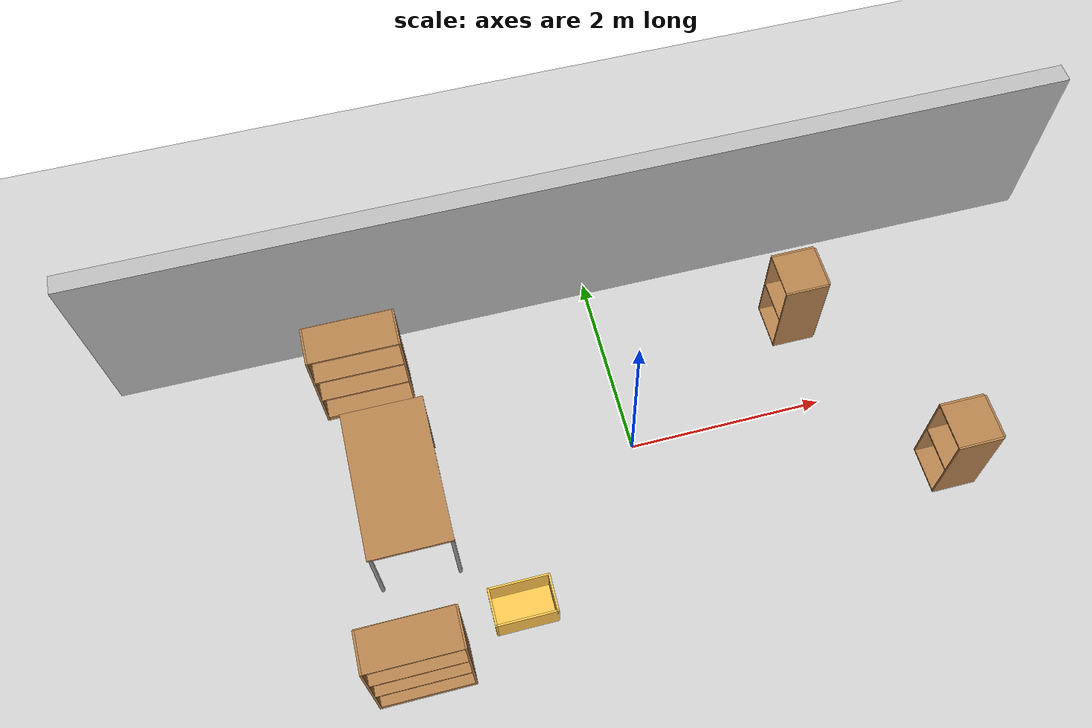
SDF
<sdf version="1.6">
 <world name="default">
  <model name="ground_plane">
   <static>1</static>
   <link name="link">
    <collision name="collision">
     <geometry><plane><normal>0 0 1</normal><size>100 100</size></plane></geometry>
     <surface><friction><ode><mu>100</mu><mu2>50</mu2></ode></friction></surface>
    </collision>
    <visual name="visual">
     <cast_shadows>0</cast_shadows>
     <geometry><plane><normal>0 0 1</normal><size>100 100</size></plane></geometry>
     <material>
      <script><uri>file://media/materials/scripts/gazebo.material</uri><name>Gazebo/Grey</name></script>
     </material>
    </visual>
    <velocity_decay><linear>0</linear><angular>0</angular></velocity_decay>
   </link>
  </model>
  <model name="wall_2_model">
   <pose>0 2 1 0 -0 0</pose>
   <static>1</static>
   <link name="wall_2_body">
    <inertial>
     <mass>1</mass>
     <inertia><ixx>1</ixx><ixy>0</ixy><ixz>0</ixz><iyy>1</iyy><iyz>0</iyz><izz>1</izz></inertia>
    </inertial>
    <collision name="collision"><geometry><box><size>10 0.2 2</size></box></geometry></collision>
    <visual name="visual"><geometry><box><size>10 0.2 2</size></box></geometry></visual>
    <velocity_decay><linear>0</linear><angular>0</angular></velocity_decay>
   </link>
  </model>
  <model name="cabinet">
   <static>1</static>
   <link name="cabinet_bottom_plate">
    <inertial>
     <pose>0 0 -1 0 -0 0</pose>
     <inertia><ixx>2.05</ixx><ixy>0</ixy><ixz>0</ixz><iyy>2.05</iyy><iyz>0</iyz><izz>2.05</izz></inertia>
     <mass>25</mass>
    </inertial>
    <collision name="cabinet_bottom_plate_geom">
     <pose>0 0 0.01 0 -0 0</pose>
     <geometry><box><size>0.45 0.45 0.02</size></box></geometry>
    </collision>
    <visual name="cabinet_bottom_plate_geom_visual">
     <pose>0 0 0.01 0 -0 0</pose>
     <geometry><box><size>0.45 0.45 0.02</size></box></geometry>
     <material>
      <script><uri>file://media/materials/scripts/gazebo.material</uri><name>Gazebo/Wood</name></script>
     </material>
    </visual>
    <collision name="cabinet_bottom_plate_geom_cabinet_back_plate">
     <pose>0.235 0 0.51 0 -0 0</pose>
     <geometry><box><size>0.02 0.45 1.02</size></box></geometry>
    </collision>
    <visual name="cabinet_bottom_plate_geom_cabinet_back_plate_visual">
     <pose>0.235 0 0.51 0 -0 0</pose>
     <geometry><box><size>0.02 0.45 1.02</size></box></geometry>
     <material>
      <script><uri>file://media/materials/scripts/gazebo.material</uri><name>Gazebo/Wood</name></script>
     </material>
    </visual>
    <collision name="cabinet_bottom_plate_geom_cabinet_left_plate">
     <pose>0 0.235 0.51 0 -0 0</pose>
     <geometry><box><size>0.45 0.02 1.02</size></box></geometry>
    </collision>
    <visual name="cabinet_bottom_plate_geom_cabinet_left_plate_visual">
     <pose>0 0.235 0.51 0 -0 0</pose>
     <geometry><box><size>0.45 0.02 1.02</size></box></geometry>
     <material>
      <script><uri>file://media/materials/scripts/gazebo.material</uri><name>Gazebo/Wood</name></script>
     </material>
    </visual>
    <collision name="cabinet_bottom_plate_geom_cabinet_middle_plate">
     <pose>0 0 0.51 0 -0 0</pose>
     <geometry><box><size>0.45 0.45 0.02</size></box></geometry>
    </collision>
    <visual name="cabinet_bottom_plate_geom_cabinet_middle_plate_visual">
     <pose>0 0 0.51 0 -0 0</pose>
     <geometry><box><size>0.45 0.45 0.02</size></box></geometry>
     <material>
      <script><uri>file://media/materials/scripts/gazebo.material</uri><name>Gazebo/Wood</name></script>
     </material>
    </visual>
    <collision name="cabinet_bottom_plate_geom_cabinet_right_plate">
     <pose>0 -0.235 0.51 0 -0 0</pose>
     <geometry><box><size>0.45 0.02 1.02</size></box></geometry>
    </collision>
    <visual name="cabinet_bottom_plate_geom_cabinet_right_plate_visual">
     <pose>0 -0.235 0.51 0 -0 0</pose>
     <geometry><box><size>0.45 0.02 1.02</size></box></geometry>
     <material>
      <script><uri>file://media/materials/scripts/gazebo.material</uri><name>Gazebo/Wood</name></script>
     </material>
    </visual>
    <collision name="cabinet_bottom_plate_geom_cabinet_top_plate">
     <pose>0 0 1.01 0 -0 0</pose>
     <geometry><box><size>0.45 0.45 0.02</size></box></geometry>
    </collision>
    <visual name="cabinet_bottom_plate_geom_cabinet_top_plate_visual">
     <pose>0 0 1.01 0 -0 0</pose>
     <geometry><box><size>0.45 0.45 0.02</size></box></geometry>
     <material>
      <script><uri>file://media/materials/scripts/gazebo.material</uri><name>Gazebo/Wood</name></script>
     </material>
    </visual>
    <velocity_decay><linear>0</linear><angular>0</angular></velocity_decay>
   </link>
   <pose>2 1 0 0 -0 0</pose>
  </model>
  <model name="bookshelf_0">
   <static>1</static>
   <link name="link">
    <inertial><mass>1</mass></inertial>
    <collision name="back">
     <pose>0 0.005 0.6 0 -0 0</pose>
     <geometry><box><size>0.9 0.01 1.2</size></box></geometry>
    </collision>
    <visual name="visual1">
     <pose>0 0.005 0.6 0 -0 0</pose>
     <geometry><box><size>0.9 0.01 1.2</size></box></geometry>
     <material>
      <script><uri>file://media/materials/scripts/gazebo.material</uri><name>Gazebo/Wood</name></script>
     </material>
    </visual>
    <collision name="left_side">
     <pose>0.45 -0.195 0.6 0 -0 0</pose>
     <geometry><box><size>0.02 0.4 1.2</size></box></geometry>
    </collision>
    <visual name="visual2">
     <pose>0.45 -0.195 0.6 0 -0 0</pose>
     <geometry><box><size>0.02 0.4 1.2</size></box></geometry>
     <material>
      <script><uri>file://media/materials/scripts/gazebo.material</uri><name>Gazebo/Wood</name></script>
     </material>
    </visual>
    <collision name="right_side">
     <pose>-0.45 -0.195 0.6 0 -0 0</pose>
     <geometry><box><size>0.02 0.4 1.2</size></box></geometry>
    </collision>
    <visual name="visual3">
     <pose>-0.45 -0.195 0.6 0 -0 0</pose>
     <geometry><box><size>0.02 0.4 1.2</size></box></geometry>
     <material>
      <script><uri>file://media/materials/scripts/gazebo.material</uri><name>Gazebo/Wood</name></script>
     </material>
    </visual>
    <collision name="bottom">
     <pose>0 -0.195 0.03 0 -0 0</pose>
     <geometry><box><size>0.88 0.4 0.06</size></box></geometry>
    </collision>
    <visual name="visual4">
     <pose>0 -0.195 0.03 0 -0 0</pose>
     <geometry><box><size>0.88 0.4 0.06</size></box></geometry>
     <material>
      <script><uri>file://media/materials/scripts/gazebo.material</uri><name>Gazebo/Wood</name></script>
     </material>
    </visual>
    <collision name="top">
     <pose>0 -0.195 1.19 0 -0 0</pose>
     <geometry><box><size>0.88 0.4 0.02</size></box></geometry>
    </collision>
    <visual name="visual5">
     <pose>0 -0.195 1.19 0 -0 0</pose>
     <geometry><box><size>0.88 0.4 0.02</size></box></geometry>
     <material>
      <script><uri>file://media/materials/scripts/gazebo.material</uri><name>Gazebo/Wood</name></script>
     </material>
    </visual>
    <collision name="low_shelf">
     <pose>0 -0.195 0.43 0 -0 0</pose>
     <geometry><box><size>0.88 0.4 0.02</size></box></geometry>
    </collision>
    <visual name="visual6">
     <pose>0 -0.195 0.43 0 -0 0</pose>
     <geometry><box><size>0.88 0.4 0.02</size></box></geometry>
     <material>
      <script><uri>file://media/materials/scripts/gazebo.material</uri><name>Gazebo/Wood</name></script>
     </material>
    </visual>
    <collision name="high_shelf">
     <pose>0 -0.195 0.8 0 -0 0</pose>
     <geometry><box><size>0.88 0.4 0.02</size></box></geometry>
    </collision>
    <visual name="visual7">
     <pose>0 -0.195 0.8 0 -0 0</pose>
     <geometry><box><size>0.88 0.4 0.02</size></box></geometry>
     <material>
      <script><uri>file://media/materials/scripts/gazebo.material</uri><name>Gazebo/Wood</name></script>
     </material>
    </visual>
    <velocity_decay><linear>0</linear><angular>0</angular></velocity_decay>
   </link>
   <pose>-2.49657 -1.57894 0 0 -0 0</pose>
  </model>
  <model name="bookshelf_1">
   <static>1</static>
   <link name="link">
    <inertial><mass>1</mass></inertial>
    <collision name="back">
     <pose>0 0.005 0.6 0 -0 0</pose>
     <geometry><box><size>0.9 0.01 1.2</size></box></geometry>
    </collision>
    <visual name="visual1">
     <pose>0 0.005 0.6 0 -0 0</pose>
     <geometry><box><size>0.9 0.01 1.2</size></box></geometry>
     <material>
      <script><uri>file://media/materials/scripts/gazebo.material</uri><name>Gazebo/Wood</name></script>
     </material>
    </visual>
    <collision name="left_side">
     <pose>0.45 -0.195 0.6 0 -0 0</pose>
     <geometry><box><size>0.02 0.4 1.2</size></box></geometry>
    </collision>
    <visual name="visual2">
     <pose>0.45 -0.195 0.6 0 -0 0</pose>
     <geometry><box><size>0.02 0.4 1.2</size></box></geometry>
     <material>
      <script><uri>file://media/materials/scripts/gazebo.material</uri><name>Gazebo/Wood</name></script>
     </material>
    </visual>
    <collision name="right_side">
     <pose>-0.45 -0.195 0.6 0 -0 0</pose>
     <geometry><box><size>0.02 0.4 1.2</size></box></geometry>
    </collision>
    <visual name="visual3">
     <pose>-0.45 -0.195 0.6 0 -0 0</pose>
     <geometry><box><size>0.02 0.4 1.2</size></box></geometry>
     <material>
      <script><uri>file://media/materials/scripts/gazebo.material</uri><name>Gazebo/Wood</name></script>
     </material>
    </visual>
    <collision name="bottom">
     <pose>0 -0.195 0.03 0 -0 0</pose>
     <geometry><box><size>0.88 0.4 0.06</size></box></geometry>
    </collision>
    <visual name="visual4">
     <pose>0 -0.195 0.03 0 -0 0</pose>
     <geometry><box><size>0.88 0.4 0.06</size></box></geometry>
     <material>
      <script><uri>file://media/materials/scripts/gazebo.material</uri><name>Gazebo/Wood</name></script>
     </material>
    </visual>
    <collision name="top">
     <pose>0 -0.195 1.19 0 -0 0</pose>
     <geometry><box><size>0.88 0.4 0.02</size></box></geometry>
    </collision>
    <visual name="visual5">
     <pose>0 -0.195 1.19 0 -0 0</pose>
     <geometry><box><size>0.88 0.4 0.02</size></box></geometry>
     <material>
      <script><uri>file://media/materials/scripts/gazebo.material</uri><name>Gazebo/Wood</name></script>
     </material>
    </visual>
    <collision name="low_shelf">
     <pose>0 -0.195 0.43 0 -0 0</pose>
     <geometry><box><size>0.88 0.4 0.02</size></box></geometry>
    </collision>
    <visual name="visual6">
     <pose>0 -0.195 0.43 0 -0 0</pose>
     <geometry><box><size>0.88 0.4 0.02</size></box></geometry>
     <material>
      <script><uri>file://media/materials/scripts/gazebo.material</uri><name>Gazebo/Wood</name></script>
     </material>
    </visual>
    <collision name="high_shelf">
     <pose>0 -0.195 0.8 0 -0 0</pose>
     <geometry><box><size>0.88 0.4 0.02</size></box></geometry>
    </collision>
    <visual name="visual7">
     <pose>0 -0.195 0.8 0 -0 0</pose>
     <geometry><box><size>0.88 0.4 0.02</size></box></geometry>
     <material>
      <script><uri>file://media/materials/scripts/gazebo.material</uri><name>Gazebo/Wood</name></script>
     </material>
    </visual>
    <velocity_decay><linear>0</linear><angular>0</angular></velocity_decay>
   </link>
   <pose>-2.49816 1.46785 0 0 -0 0</pose>
  </model>
  <model name="cabinet_3">
   <static>1</static>
   <link name="cabinet_bottom_plate">
    <inertial>
     <pose>0 0 -1 0 -0 0</pose>
     <inertia><ixx>2.05</ixx><ixy>0</ixy><ixz>0</ixz><iyy>2.05</iyy><iyz>0</iyz><izz>2.05</izz></inertia>
     <mass>25</mass>
    </inertial>
    <collision name="cabinet_bottom_plate_geom">
     <pose>0 0 0.01 0 -0 0</pose>
     <geometry><box><size>0.45 0.45 0.02</size></box></geometry>
    </collision>
    <visual name="cabinet_bottom_plate_geom_visual">
     <pose>0 0 0.01 0 -0 0</pose>
     <geometry><box><size>0.45 0.45 0.02</size></box></geometry>
     <material>
      <script><uri>file://media/materials/scripts/gazebo.material</uri><name>Gazebo/Wood</name></script>
     </material>
    </visual>
    <collision name="cabinet_bottom_plate_geom_cabinet_back_plate">
     <pose>0.235 0 0.51 0 -0 0</pose>
     <geometry><box><size>0.02 0.45 1.02</size></box></geometry>
    </collision>
    <visual name="cabinet_bottom_plate_geom_cabinet_back_plate_visual">
     <pose>0.235 0 0.51 0 -0 0</pose>
     <geometry><box><size>0.02 0.45 1.02</size></box></geometry>
     <material>
      <script><uri>file://media/materials/scripts/gazebo.material</uri><name>Gazebo/Wood</name></script>
     </material>
    </visual>
    <collision name="cabinet_bottom_plate_geom_cabinet_left_plate">
     <pose>0 0.235 0.51 0 -0 0</pose>
     <geometry><box><size>0.45 0.02 1.02</size></box></geometry>
    </collision>
    <visual name="cabinet_bottom_plate_geom_cabinet_left_plate_visual">
     <pose>0 0.235 0.51 0 -0 0</pose>
     <geometry><box><size>0.45 0.02 1.02</size></box></geometry>
     <material>
      <script><uri>file://media/materials/scripts/gazebo.material</uri><name>Gazebo/Wood</name></script>
     </material>
    </visual>
    <collision name="cabinet_bottom_plate_geom_cabinet_middle_plate">
     <pose>0 0 0.51 0 -0 0</pose>
     <geometry><box><size>0.45 0.45 0.02</size></box></geometry>
    </collision>
    <visual name="cabinet_bottom_plate_geom_cabinet_middle_plate_visual">
     <pose>0 0 0.51 0 -0 0</pose>
     <geometry><box><size>0.45 0.45 0.02</size></box></geometry>
     <material>
      <script><uri>file://media/materials/scripts/gazebo.material</uri><name>Gazebo/Wood</name></script>
     </material>
    </visual>
    <collision name="cabinet_bottom_plate_geom_cabinet_right_plate">
     <pose>0 -0.235 0.51 0 -0 0</pose>
     <geometry><box><size>0.45 0.02 1.02</size></box></geometry>
    </collision>
    <visual name="cabinet_bottom_plate_geom_cabinet_right_plate_visual">
     <pose>0 -0.235 0.51 0 -0 0</pose>
     <geometry><box><size>0.45 0.02 1.02</size></box></geometry>
     <material>
      <script><uri>file://media/materials/scripts/gazebo.material</uri><name>Gazebo/Wood</name></script>
     </material>
    </visual>
    <collision name="cabinet_bottom_plate_geom_cabinet_top_plate">
     <pose>0 0 1.01 0 -0 0</pose>
     <geometry><box><size>0.45 0.45 0.02</size></box></geometry>
    </collision>
    <visual name="cabinet_bottom_plate_geom_cabinet_top_plate_visual">
     <pose>0 0 1.01 0 -0 0</pose>
     <geometry><box><size>0.45 0.45 0.02</size></box></geometry>
     <material>
      <script><uri>file://media/materials/scripts/gazebo.material</uri><name>Gazebo/Wood</name></script>
     </material>
    </visual>
    <velocity_decay><linear>0</linear><angular>0</angular></velocity_decay>
   </link>
   <pose>3 -1 0 0 -0 0</pose>
  </model>
  <model name="table_0_clone">
   <static>1</static>
   <link name="link">
    <collision name="surface">
     <pose>0 0 1 0 -0 0</pose>
     <geometry><box><size>1.5 0.8 0.03</size></box></geometry>
    </collision>
    <visual name="visual1">
     <pose>0 0 1 0 -0 0</pose>
     <geometry><box><size>1.5 0.8 0.03</size></box></geometry>
     <material>
      <script><uri>file://media/materials/scripts/gazebo.material</uri><name>Gazebo/Wood</name></script>
     </material>
    </visual>
    <collision name="front_left_leg">
     <pose>0.68 0.38 0.5 0 -0 0</pose>
     <geometry><cylinder><radius>0.02</radius><length>1</length></cylinder></geometry>
    </collision>
    <visual name="front_left_leg">
     <pose>0.68 0.38 0.5 0 -0 0</pose>
     <geometry><cylinder><radius>0.02</radius><length>1</length></cylinder></geometry>
     <material>
      <script><uri>file://media/materials/scripts/gazebo.material</uri><name>Gazebo/Grey</name></script>
     </material>
    </visual>
    <collision name="front_right_leg">
     <pose>0.68 -0.38 0.5 0 -0 0</pose>
     <geometry><cylinder><radius>0.02</radius><length>1</length></cylinder></geometry>
    </collision>
    <visual name="front_right_leg">
     <pose>0.68 -0.38 0.5 0 -0 0</pose>
     <geometry><cylinder><radius>0.02</radius><length>1</length></cylinder></geometry>
     <material>
      <script><uri>file://media/materials/scripts/gazebo.material</uri><name>Gazebo/Grey</name></script>
     </material>
    </visual>
    <collision name="back_right_leg">
     <pose>-0.68 -0.38 0.5 0 -0 0</pose>
     <geometry><cylinder><radius>0.02</radius><length>1</length></cylinder></geometry>
    </collision>
    <visual name="back_right_leg">
     <pose>-0.68 -0.38 0.5 0 -0 0</pose>
     <geometry><cylinder><radius>0.02</radius><length>1</length></cylinder></geometry>
     <material>
      <script><uri>file://media/materials/scripts/gazebo.material</uri><name>Gazebo/Grey</name></script>
     </material>
    </visual>
    <collision name="back_left_leg">
     <pose>-0.68 0.38 0.5 0 -0 0</pose>
     <geometry><cylinder><radius>0.02</radius><length>1</length></cylinder></geometry>
    </collision>
    <visual name="back_left_leg">
     <pose>-0.68 0.38 0.5 0 -0 0</pose>
     <geometry><cylinder><radius>0.02</radius><length>1</length></cylinder></geometry>
     <material>
      <script><uri>file://media/materials/scripts/gazebo.material</uri><name>Gazebo/Grey</name></script>
     </material>
    </visual>
    <velocity_decay><linear>0</linear><angular>0</angular></velocity_decay>
   </link>
   <pose>-2.34721 -0.179811 0 0 -0 1.57</pose>
  </model>
  <model name="Wall_Cabinet_24x15M">
   <link name="Wall_41">
    <pose>0 0 0.01 0 -0 0</pose>
    <inertial>
     <mass>1.4983</mass>
     <inertia><ixx>0.011</ixx><iyy>0.0571</iyy><izz>0.0462</izz><ixy>0</ixy><ixz>0</ixz><iyz>0</iyz></inertia>
    </inertial>
    <collision name="Wall_41_Collision"><geometry><box><size>0.608 0.296 0.02</size></box></geometry></collision>
    <visual name="Wall_41_Visual">
     <geometry><box><size>0.608 0.296 0.02</size></box></geometry>
     <material>
      <script><uri>file://media/materials/scripts/gazebo.material</uri><name>Gazebo/Grey</name></script>
      <ambient>1 0.764706 0.305882 1</ambient>
     </material>
    </visual>
    <pose>0.000184 0.181953 0 0 -0 0</pose>
   </link>
   <joint name="41_43" type="fixed">
    <pose>-0.304 0 0 0 -0 0</pose>
    <parent>Wall_43</parent>
    <child>Wall_41</child>
    <axis>
     <xyz>0 0 1</xyz>
     <use_parent_model_frame>0</use_parent_model_frame>
     <limit><lower>-1e+16</lower><upper>1e+16</upper></limit>
    </axis>
   </joint>
   <joint name="41_45" type="fixed">
    <pose>0.304 0 0 0 -0 0</pose>
    <parent>Wall_45</parent>
    <child>Wall_41</child>
    <axis>
     <xyz>0 0 1</xyz>
     <use_parent_model_frame>0</use_parent_model_frame>
     <limit><lower>-1e+16</lower><upper>1e+16</upper></limit>
    </axis>
   </joint>
   <joint name="41_49" type="fixed">
    <pose>0 -0.148 0 0 -0 0</pose>
    <parent>Wall_49</parent>
    <child>Wall_41</child>
    <axis>
     <xyz>0 0 1</xyz>
     <use_parent_model_frame>0</use_parent_model_frame>
     <limit><lower>-1e+16</lower><upper>1e+16</upper></limit>
    </axis>
   </joint>
   <link name="Wall_43">
    <pose>-0.294 0 0.192 0 -0 0</pose>
    <inertial>
     <mass>0.9463</mass>
     <inertia><ixx>0.0069</ixx><iyy>0.0185</iyy><izz>0.0117</izz><ixy>0</ixy><ixz>0</ixz><iyz>0</iyz></inertia>
    </inertial>
    <collision name="Wall_43_Collision"><geometry><box><size>0.02 0.296 0.384</size></box></geometry></collision>
    <visual name="Wall_43_Visual">
     <geometry><box><size>0.02 0.296 0.384</size></box></geometry>
     <material>
      <script><uri>file://media/materials/scripts/gazebo.material</uri><name>Gazebo/Grey</name></script>
      <ambient>1 0.764706 0.305882 1</ambient>
     </material>
    </visual>
   </link>
   <link name="Wall_45">
    <pose>0.294 0 0.192 0 -0 0</pose>
    <inertial>
     <mass>0.9463</mass>
     <inertia><ixx>0.0069</ixx><iyy>0.0185</iyy><izz>0.0117</izz><ixy>0</ixy><ixz>0</ixz><iyz>0</iyz></inertia>
    </inertial>
    <collision name="Wall_45_Collision"><geometry><box><size>0.02 0.296 0.384</size></box></geometry></collision>
    <visual name="Wall_45_Visual">
     <geometry><box><size>0.02 0.296 0.384</size></box></geometry>
     <material>
      <script><uri>file://media/materials/scripts/gazebo.material</uri><name>Gazebo/Grey</name></script>
      <ambient>1 0.764706 0.305882 1</ambient>
     </material>
    </visual>
   </link>
   <link name="Wall_47">
    <pose>0 0 0.374 0 -0 0</pose>
    <inertial>
     <mass>1.4983</mass>
     <inertia><ixx>0.011</ixx><iyy>0.0571</iyy><izz>0.0462</izz><ixy>0</ixy><ixz>0</ixz><iyz>0</iyz></inertia>
    </inertial>
    <collision name="Wall_47_Collision"><geometry><box><size>0.608 0.296 0.02</size></box></geometry></collision>
    <visual name="Wall_47_Visual">
     <geometry><box><size>0.608 0.296 0.02</size></box></geometry>
     <material>
      <script><uri>file://media/materials/scripts/gazebo.material</uri><name>Gazebo/Grey</name></script>
      <ambient>1 0.764706 0.305882 1</ambient>
     </material>
    </visual>
   </link>
   <joint name="47_43" type="fixed">
    <pose>-0.304 0 0 0 -0 0</pose>
    <parent>Wall_43</parent>
    <child>Wall_47</child>
    <axis>
     <xyz>0 0 1</xyz>
     <use_parent_model_frame>0</use_parent_model_frame>
     <limit><lower>-1e+16</lower><upper>1e+16</upper></limit>
    </axis>
   </joint>
   <joint name="47_45" type="fixed">
    <pose>0.304 0 0 0 -0 0</pose>
    <parent>Wall_45</parent>
    <child>Wall_47</child>
    <axis>
     <xyz>0 0 1</xyz>
     <use_parent_model_frame>0</use_parent_model_frame>
     <limit><lower>-1e+16</lower><upper>1e+16</upper></limit>
    </axis>
   </joint>
   <joint name="47_49" type="fixed">
    <pose>0 -0.148 0 0 -0 0</pose>
    <parent>Wall_49</parent>
    <child>Wall_47</child>
    <axis>
     <xyz>0 0 1</xyz>
     <use_parent_model_frame>0</use_parent_model_frame>
     <limit><lower>-1e+16</lower><upper>1e+16</upper></limit>
    </axis>
   </joint>
   <link name="Wall_49">
    <pose>0 -0.138 0.19 0 -0 0</pose>
    <inertial>
     <mass>1.9108</mass>
     <inertia><ixx>0.0231</ixx><iyy>0.0582</iyy><izz>0.0811</izz><ixy>0</ixy><ixz>0</ixz><iyz>0</iyz></inertia>
    </inertial>
    <collision name="Wall_49_Collision"><geometry><box><size>0.604 0.02 0.38</size></box></geometry></collision>
    <visual name="Wall_49_Visual">
     <geometry><box><size>0.604 0.02 0.38</size></box></geometry>
     <material>
      <script><uri>file://media/materials/scripts/gazebo.material</uri><name>Gazebo/Grey</name></script>
      <ambient>1 0.764706 0.305882 1</ambient>
     </material>
    </visual>
   </link>
   <joint name="49_43" type="fixed">
    <pose>-0.302 0 0 0 -0 0</pose>
    <parent>Wall_41</parent>
    <child>Wall_49</child>
    <axis>
     <xyz>0 1 0</xyz>
     <use_parent_model_frame>0</use_parent_model_frame>
     <limit><lower>-1e+16</lower><upper>1e+16</upper></limit>
    </axis>
   </joint>
   <joint name="49_45" type="fixed">
    <pose>0.302 0 0 0 -0 0</pose>
    <parent>Wall_45</parent>
    <child>Wall_49</child>
    <axis>
     <xyz>0 1 0</xyz>
     <use_parent_model_frame>0</use_parent_model_frame>
     <limit><lower>-1e+16</lower><upper>1e+16</upper></limit>
    </axis>
   </joint>
   <static>1</static>
   <pose>-1.46143 -1.21151 0.2 1.5707 -0 0</pose>
  </model>
 </world>
</sdf>
